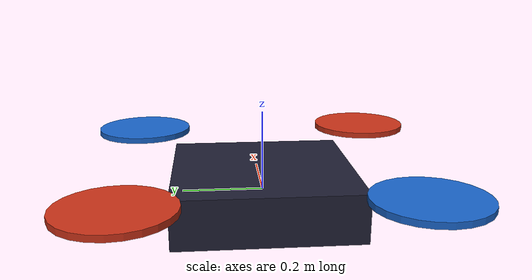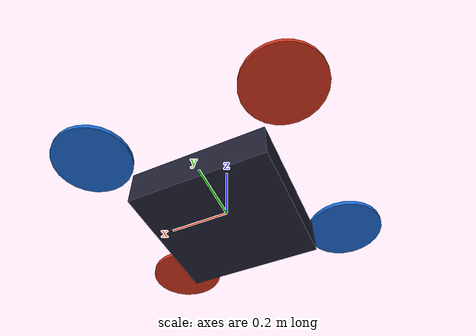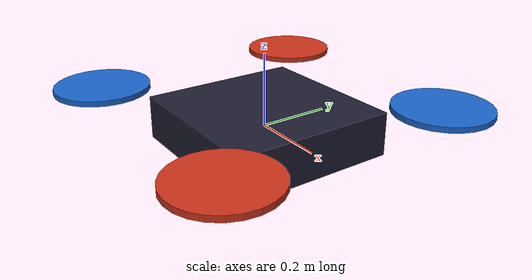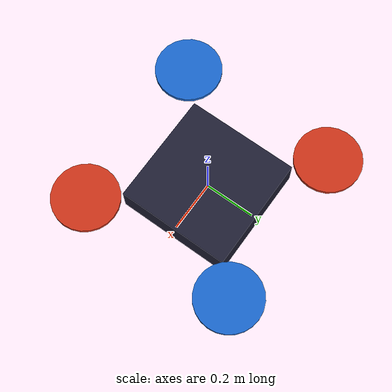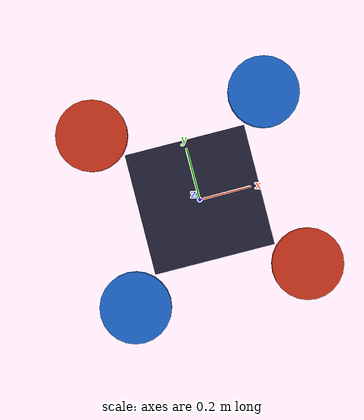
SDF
<?xml version="1.0"?>
<sdf version="1.9">
  <model name="quadcopter">
    <pose>0 0 0 0 0 0</pose>
    <self_collide>false</self_collide>
    <allow_auto_disable>false</allow_auto_disable>

    <link name="base_link">
      <inertial>
        <mass>1.0</mass>
        <inertia>
          <ixx>0.02</ixx>
          <iyy>0.02</iyy>
          <izz>0.04</izz>
          <ixy>0.0</ixy>
          <ixz>0.0</ixz>
          <iyz>0.0</iyz>
        </inertia>
      </inertial>
      <visual name="body_visual">
        <geometry>
          <box><size>0.45 0.45 0.12</size></box>
        </geometry>
        <material>
          <ambient>0.08 0.08 0.12 1</ambient>
          <diffuse>0.12 0.12 0.2 1</diffuse>
        </material>
      </visual>
      <collision name="body_collision">
        <geometry>
          <box><size>0.45 0.45 0.12</size></box>
        </geometry>
      </collision>
      <sensor name="imu" type="imu">
        <always_on>true</always_on>
        <update_rate>100</update_rate>
        <topic>/quadcopter/imu</topic>
      </sensor>
    </link>

    <link name="rotor_0">
      <pose>0.32 0.32 0.08 0 0 0</pose>
      <inertial><mass>0.01</mass><inertia><ixx>0.00001</ixx><iyy>0.00001</iyy><izz>0.00001</izz><ixy>0</ixy><ixz>0</ixz><iyz>0</iyz></inertia></inertial>
      <visual name="rotor_0_visual"><geometry><cylinder><radius>0.13</radius><length>0.015</length></cylinder></geometry><material><ambient>0.1 0.4 0.8 1</ambient><diffuse>0.1 0.4 0.8 1</diffuse></material></visual>
    </link>
    <joint name="rotor_0_joint" type="revolute">
      <parent>base_link</parent><child>rotor_0</child><pose>0.32 0.32 0.08 0 0 0</pose>
      <axis><xyz>0 0 1</xyz><limit><lower>-1e16</lower><upper>1e16</upper></limit></axis>
    </joint>

    <link name="rotor_1">
      <pose>-0.32 0.32 0.08 0 0 0</pose>
      <inertial><mass>0.01</mass><inertia><ixx>0.00001</ixx><iyy>0.00001</iyy><izz>0.00001</izz><ixy>0</ixy><ixz>0</ixz><iyz>0</iyz></inertia></inertial>
      <visual name="rotor_1_visual"><geometry><cylinder><radius>0.13</radius><length>0.015</length></cylinder></geometry><material><ambient>0.8 0.2 0.1 1</ambient><diffuse>0.8 0.2 0.1 1</diffuse></material></visual>
    </link>
    <joint name="rotor_1_joint" type="revolute">
      <parent>base_link</parent><child>rotor_1</child><pose>-0.32 0.32 0.08 0 0 0</pose>
      <axis><xyz>0 0 1</xyz><limit><lower>-1e16</lower><upper>1e16</upper></limit></axis>
    </joint>

    <link name="rotor_2">
      <pose>-0.32 -0.32 0.08 0 0 0</pose>
      <inertial><mass>0.01</mass><inertia><ixx>0.00001</ixx><iyy>0.00001</iyy><izz>0.00001</izz><ixy>0</ixy><ixz>0</ixz><iyz>0</iyz></inertia></inertial>
      <visual name="rotor_2_visual"><geometry><cylinder><radius>0.13</radius><length>0.015</length></cylinder></geometry><material><ambient>0.1 0.4 0.8 1</ambient><diffuse>0.1 0.4 0.8 1</diffuse></material></visual>
    </link>
    <joint name="rotor_2_joint" type="revolute">
      <parent>base_link</parent><child>rotor_2</child><pose>-0.32 -0.32 0.08 0 0 0</pose>
      <axis><xyz>0 0 1</xyz><limit><lower>-1e16</lower><upper>1e16</upper></limit></axis>
    </joint>

    <link name="rotor_3">
      <pose>0.32 -0.32 0.08 0 0 0</pose>
      <inertial><mass>0.01</mass><inertia><ixx>0.00001</ixx><iyy>0.00001</iyy><izz>0.00001</izz><ixy>0</ixy><ixz>0</ixz><iyz>0</iyz></inertia></inertial>
      <visual name="rotor_3_visual"><geometry><cylinder><radius>0.13</radius><length>0.015</length></cylinder></geometry><material><ambient>0.8 0.2 0.1 1</ambient><diffuse>0.8 0.2 0.1 1</diffuse></material></visual>
    </link>
    <joint name="rotor_3_joint" type="revolute">
      <parent>base_link</parent><child>rotor_3</child><pose>0.32 -0.32 0.08 0 0 0</pose>
      <axis><xyz>0 0 1</xyz><limit><lower>-1e16</lower><upper>1e16</upper></limit></axis>
    </joint>

    <plugin filename="gz-sim-multicopter-motor-model-system" name="gz::sim::systems::MulticopterMotorModel">
      <robotNamespace>quadcopter</robotNamespace>
      <jointName>rotor_0_joint</jointName>
      <linkName>rotor_0</linkName>
      <turningDirection>ccw</turningDirection>
      <timeConstantUp>0.0125</timeConstantUp>
      <timeConstantDown>0.025</timeConstantDown>
      <maxRotVelocity>800.0</maxRotVelocity>
      <motorConstant>8.54858e-06</motorConstant>
      <momentConstant>0.016</momentConstant>
      <commandSubTopic>command/motor_speed</commandSubTopic>
      <actuator_number>0</actuator_number>
      <rotorDragCoefficient>8.06428e-05</rotorDragCoefficient>
      <rollingMomentCoefficient>1e-06</rollingMomentCoefficient>
      <motorSpeedPubTopic>motor_speed/0</motorSpeedPubTopic>
      <rotorVelocitySlowdownSim>10</rotorVelocitySlowdownSim>
      <motorType>velocity</motorType>
    </plugin>
    <plugin filename="gz-sim-multicopter-motor-model-system" name="gz::sim::systems::MulticopterMotorModel">
      <robotNamespace>quadcopter</robotNamespace>
      <jointName>rotor_1_joint</jointName>
      <linkName>rotor_1</linkName>
      <turningDirection>cw</turningDirection>
      <timeConstantUp>0.0125</timeConstantUp>
      <timeConstantDown>0.025</timeConstantDown>
      <maxRotVelocity>800.0</maxRotVelocity>
      <motorConstant>8.54858e-06</motorConstant>
      <momentConstant>0.016</momentConstant>
      <commandSubTopic>command/motor_speed</commandSubTopic>
      <actuator_number>1</actuator_number>
      <rotorDragCoefficient>8.06428e-05</rotorDragCoefficient>
      <rollingMomentCoefficient>1e-06</rollingMomentCoefficient>
      <motorSpeedPubTopic>motor_speed/1</motorSpeedPubTopic>
      <rotorVelocitySlowdownSim>10</rotorVelocitySlowdownSim>
      <motorType>velocity</motorType>
    </plugin>
    <plugin filename="gz-sim-multicopter-motor-model-system" name="gz::sim::systems::MulticopterMotorModel">
      <robotNamespace>quadcopter</robotNamespace>
      <jointName>rotor_2_joint</jointName>
      <linkName>rotor_2</linkName>
      <turningDirection>ccw</turningDirection>
      <timeConstantUp>0.0125</timeConstantUp>
      <timeConstantDown>0.025</timeConstantDown>
      <maxRotVelocity>800.0</maxRotVelocity>
      <motorConstant>8.54858e-06</motorConstant>
      <momentConstant>0.016</momentConstant>
      <commandSubTopic>command/motor_speed</commandSubTopic>
      <actuator_number>2</actuator_number>
      <rotorDragCoefficient>8.06428e-05</rotorDragCoefficient>
      <rollingMomentCoefficient>1e-06</rollingMomentCoefficient>
      <motorSpeedPubTopic>motor_speed/2</motorSpeedPubTopic>
      <rotorVelocitySlowdownSim>10</rotorVelocitySlowdownSim>
      <motorType>velocity</motorType>
    </plugin>
    <plugin filename="gz-sim-multicopter-motor-model-system" name="gz::sim::systems::MulticopterMotorModel">
      <robotNamespace>quadcopter</robotNamespace>
      <jointName>rotor_3_joint</jointName>
      <linkName>rotor_3</linkName>
      <turningDirection>cw</turningDirection>
      <timeConstantUp>0.0125</timeConstantUp>
      <timeConstantDown>0.025</timeConstantDown>
      <maxRotVelocity>800.0</maxRotVelocity>
      <motorConstant>8.54858e-06</motorConstant>
      <momentConstant>0.016</momentConstant>
      <commandSubTopic>command/motor_speed</commandSubTopic>
      <actuator_number>3</actuator_number>
      <rotorDragCoefficient>8.06428e-05</rotorDragCoefficient>
      <rollingMomentCoefficient>1e-06</rollingMomentCoefficient>
      <motorSpeedPubTopic>motor_speed/3</motorSpeedPubTopic>
      <rotorVelocitySlowdownSim>10</rotorVelocitySlowdownSim>
      <motorType>velocity</motorType>
    </plugin>

    <plugin filename="gz-sim-odometry-publisher-system" name="gz::sim::systems::OdometryPublisher">
      <dimensions>3</dimensions>
      <odom_frame>odom</odom_frame>
      <robot_base_frame>base_link</robot_base_frame>
      <odom_topic>/quadcopter/odometry</odom_topic>
      <odom_publish_frequency>50</odom_publish_frequency>
    </plugin>
  </model>
</sdf>
